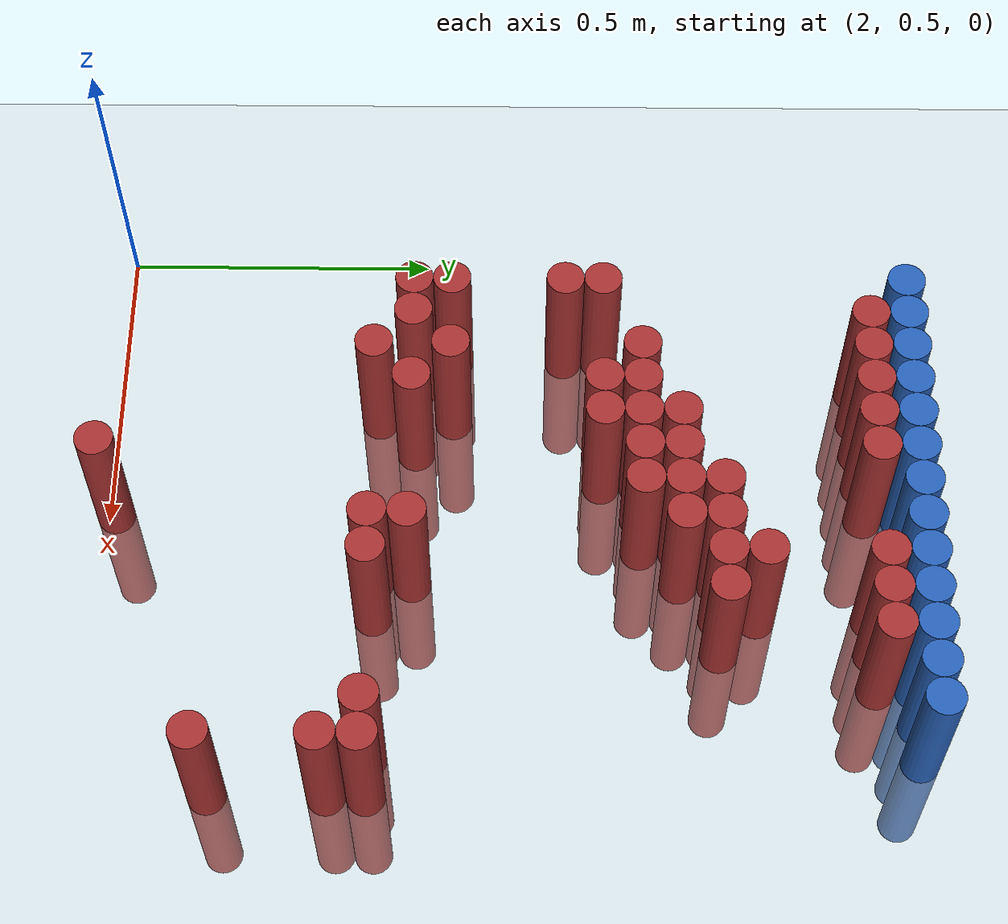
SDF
<sdf version="1.6">
 <world name="default">
  <model name="ground_plane">
   <static>1</static>
   <link name="link">
    <collision name="collision">
     <geometry><plane><normal>0 0 1</normal><size>100 100</size></plane></geometry>
     <surface><friction><ode><mu>100</mu><mu2>50</mu2></ode></friction></surface>
    </collision>
    <visual name="visual">
     <cast_shadows>0</cast_shadows>
     <geometry><plane><normal>0 0 1</normal><size>100 100</size></plane></geometry>
     <material>
      <script><uri>file://media/materials/scripts/gazebo.material</uri><name>Gazebo/Grey</name></script>
     </material>
    </visual>
   </link>
  </model>
  <model name="unit_cylinder_97">
   <static>1</static>
   <pose>2.190000 1.770000 0.000000 0.000000 0.000000 0.000000</pose>
   <link name="link">
    <inertial>
     <mass>1</mass>
     <inertia><ixx>0.145833</ixx><ixy>0</ixy><ixz>0</ixz><iyy>0.145833</iyy><iyz>0</iyz><izz>0.125</izz></inertia>
    </inertial>
    <collision name="collision">
     <geometry><cylinder><radius>0.030000</radius><length>0.5</length></cylinder></geometry>
    </collision>
    <visual name="visual">
     <geometry><cylinder><radius>0.030000</radius><length>0.5</length></cylinder></geometry>
     <material>
      <ambient>0.152000 0.379000 0.720000 1</ambient>
      <diffuse>0.152000 0.379000 0.720000 1</diffuse>
     </material>
     <material>
      <script><name>Gazebo/Grey</name><uri>file://media/materials/scripts/gazebo.material</uri></script>
     </material>
    </visual>
   </link>
  </model>
  <model name="unit_cylinder_98">
   <static>1</static>
   <pose>2.250000 1.770000 0.000000 0.000000 0.000000 0.000000</pose>
   <link name="link">
    <inertial>
     <mass>1</mass>
     <inertia><ixx>0.145833</ixx><ixy>0</ixy><ixz>0</ixz><iyy>0.145833</iyy><iyz>0</iyz><izz>0.125</izz></inertia>
    </inertial>
    <collision name="collision">
     <geometry><cylinder><radius>0.030000</radius><length>0.5</length></cylinder></geometry>
    </collision>
    <visual name="visual">
     <geometry><cylinder><radius>0.030000</radius><length>0.5</length></cylinder></geometry>
     <material>
      <ambient>0.152000 0.379000 0.720000 1</ambient>
      <diffuse>0.152000 0.379000 0.720000 1</diffuse>
     </material>
     <material>
      <script><name>Gazebo/Grey</name><uri>file://media/materials/scripts/gazebo.material</uri></script>
     </material>
    </visual>
   </link>
  </model>
  <model name="unit_cylinder_99">
   <static>1</static>
   <pose>2.310000 1.770000 0.000000 0.000000 0.000000 0.000000</pose>
   <link name="link">
    <inertial>
     <mass>1</mass>
     <inertia><ixx>0.145833</ixx><ixy>0</ixy><ixz>0</ixz><iyy>0.145833</iyy><iyz>0</iyz><izz>0.125</izz></inertia>
    </inertial>
    <collision name="collision">
     <geometry><cylinder><radius>0.030000</radius><length>0.5</length></cylinder></geometry>
    </collision>
    <visual name="visual">
     <geometry><cylinder><radius>0.030000</radius><length>0.5</length></cylinder></geometry>
     <material>
      <ambient>0.152000 0.379000 0.720000 1</ambient>
      <diffuse>0.152000 0.379000 0.720000 1</diffuse>
     </material>
     <material>
      <script><name>Gazebo/Grey</name><uri>file://media/materials/scripts/gazebo.material</uri></script>
     </material>
    </visual>
   </link>
  </model>
  <model name="unit_cylinder_100">
   <static>1</static>
   <pose>2.370000 1.770000 0.000000 0.000000 0.000000 0.000000</pose>
   <link name="link">
    <inertial>
     <mass>1</mass>
     <inertia><ixx>0.145833</ixx><ixy>0</ixy><ixz>0</ixz><iyy>0.145833</iyy><iyz>0</iyz><izz>0.125</izz></inertia>
    </inertial>
    <collision name="collision">
     <geometry><cylinder><radius>0.030000</radius><length>0.5</length></cylinder></geometry>
    </collision>
    <visual name="visual">
     <geometry><cylinder><radius>0.030000</radius><length>0.5</length></cylinder></geometry>
     <material>
      <ambient>0.152000 0.379000 0.720000 1</ambient>
      <diffuse>0.152000 0.379000 0.720000 1</diffuse>
     </material>
     <material>
      <script><name>Gazebo/Grey</name><uri>file://media/materials/scripts/gazebo.material</uri></script>
     </material>
    </visual>
   </link>
  </model>
  <model name="unit_cylinder_101">
   <static>1</static>
   <pose>2.430000 1.770000 0.000000 0.000000 0.000000 0.000000</pose>
   <link name="link">
    <inertial>
     <mass>1</mass>
     <inertia><ixx>0.145833</ixx><ixy>0</ixy><ixz>0</ixz><iyy>0.145833</iyy><iyz>0</iyz><izz>0.125</izz></inertia>
    </inertial>
    <collision name="collision">
     <geometry><cylinder><radius>0.030000</radius><length>0.5</length></cylinder></geometry>
    </collision>
    <visual name="visual">
     <geometry><cylinder><radius>0.030000</radius><length>0.5</length></cylinder></geometry>
     <material>
      <ambient>0.152000 0.379000 0.720000 1</ambient>
      <diffuse>0.152000 0.379000 0.720000 1</diffuse>
     </material>
     <material>
      <script><name>Gazebo/Grey</name><uri>file://media/materials/scripts/gazebo.material</uri></script>
     </material>
    </visual>
   </link>
  </model>
  <model name="unit_cylinder_102">
   <static>1</static>
   <pose>2.490000 1.770000 0.000000 0.000000 0.000000 0.000000</pose>
   <link name="link">
    <inertial>
     <mass>1</mass>
     <inertia><ixx>0.145833</ixx><ixy>0</ixy><ixz>0</ixz><iyy>0.145833</iyy><iyz>0</iyz><izz>0.125</izz></inertia>
    </inertial>
    <collision name="collision">
     <geometry><cylinder><radius>0.030000</radius><length>0.5</length></cylinder></geometry>
    </collision>
    <visual name="visual">
     <geometry><cylinder><radius>0.030000</radius><length>0.5</length></cylinder></geometry>
     <material>
      <ambient>0.152000 0.379000 0.720000 1</ambient>
      <diffuse>0.152000 0.379000 0.720000 1</diffuse>
     </material>
     <material>
      <script><name>Gazebo/Grey</name><uri>file://media/materials/scripts/gazebo.material</uri></script>
     </material>
    </visual>
   </link>
  </model>
  <model name="unit_cylinder_103">
   <static>1</static>
   <pose>2.550000 1.770000 0.000000 0.000000 0.000000 0.000000</pose>
   <link name="link">
    <inertial>
     <mass>1</mass>
     <inertia><ixx>0.145833</ixx><ixy>0</ixy><ixz>0</ixz><iyy>0.145833</iyy><iyz>0</iyz><izz>0.125</izz></inertia>
    </inertial>
    <collision name="collision">
     <geometry><cylinder><radius>0.030000</radius><length>0.5</length></cylinder></geometry>
    </collision>
    <visual name="visual">
     <geometry><cylinder><radius>0.030000</radius><length>0.5</length></cylinder></geometry>
     <material>
      <ambient>0.152000 0.379000 0.720000 1</ambient>
      <diffuse>0.152000 0.379000 0.720000 1</diffuse>
     </material>
     <material>
      <script><name>Gazebo/Grey</name><uri>file://media/materials/scripts/gazebo.material</uri></script>
     </material>
    </visual>
   </link>
  </model>
  <model name="unit_cylinder_104">
   <static>1</static>
   <pose>2.610000 1.770000 0.000000 0.000000 0.000000 0.000000</pose>
   <link name="link">
    <inertial>
     <mass>1</mass>
     <inertia><ixx>0.145833</ixx><ixy>0</ixy><ixz>0</ixz><iyy>0.145833</iyy><iyz>0</iyz><izz>0.125</izz></inertia>
    </inertial>
    <collision name="collision">
     <geometry><cylinder><radius>0.030000</radius><length>0.5</length></cylinder></geometry>
    </collision>
    <visual name="visual">
     <geometry><cylinder><radius>0.030000</radius><length>0.5</length></cylinder></geometry>
     <material>
      <ambient>0.152000 0.379000 0.720000 1</ambient>
      <diffuse>0.152000 0.379000 0.720000 1</diffuse>
     </material>
     <material>
      <script><name>Gazebo/Grey</name><uri>file://media/materials/scripts/gazebo.material</uri></script>
     </material>
    </visual>
   </link>
  </model>
  <model name="unit_cylinder_105">
   <static>1</static>
   <pose>2.670000 1.770000 0.000000 0.000000 0.000000 0.000000</pose>
   <link name="link">
    <inertial>
     <mass>1</mass>
     <inertia><ixx>0.145833</ixx><ixy>0</ixy><ixz>0</ixz><iyy>0.145833</iyy><iyz>0</iyz><izz>0.125</izz></inertia>
    </inertial>
    <collision name="collision">
     <geometry><cylinder><radius>0.030000</radius><length>0.5</length></cylinder></geometry>
    </collision>
    <visual name="visual">
     <geometry><cylinder><radius>0.030000</radius><length>0.5</length></cylinder></geometry>
     <material>
      <ambient>0.152000 0.379000 0.720000 1</ambient>
      <diffuse>0.152000 0.379000 0.720000 1</diffuse>
     </material>
     <material>
      <script><name>Gazebo/Grey</name><uri>file://media/materials/scripts/gazebo.material</uri></script>
     </material>
    </visual>
   </link>
  </model>
  <model name="unit_cylinder_106">
   <static>1</static>
   <pose>2.730000 1.770000 0.000000 0.000000 0.000000 0.000000</pose>
   <link name="link">
    <inertial>
     <mass>1</mass>
     <inertia><ixx>0.145833</ixx><ixy>0</ixy><ixz>0</ixz><iyy>0.145833</iyy><iyz>0</iyz><izz>0.125</izz></inertia>
    </inertial>
    <collision name="collision">
     <geometry><cylinder><radius>0.030000</radius><length>0.5</length></cylinder></geometry>
    </collision>
    <visual name="visual">
     <geometry><cylinder><radius>0.030000</radius><length>0.5</length></cylinder></geometry>
     <material>
      <ambient>0.152000 0.379000 0.720000 1</ambient>
      <diffuse>0.152000 0.379000 0.720000 1</diffuse>
     </material>
     <material>
      <script><name>Gazebo/Grey</name><uri>file://media/materials/scripts/gazebo.material</uri></script>
     </material>
    </visual>
   </link>
  </model>
  <model name="unit_cylinder_107">
   <static>1</static>
   <pose>2.790000 1.770000 0.000000 0.000000 0.000000 0.000000</pose>
   <link name="link">
    <inertial>
     <mass>1</mass>
     <inertia><ixx>0.145833</ixx><ixy>0</ixy><ixz>0</ixz><iyy>0.145833</iyy><iyz>0</iyz><izz>0.125</izz></inertia>
    </inertial>
    <collision name="collision">
     <geometry><cylinder><radius>0.030000</radius><length>0.5</length></cylinder></geometry>
    </collision>
    <visual name="visual">
     <geometry><cylinder><radius>0.030000</radius><length>0.5</length></cylinder></geometry>
     <material>
      <ambient>0.152000 0.379000 0.720000 1</ambient>
      <diffuse>0.152000 0.379000 0.720000 1</diffuse>
     </material>
     <material>
      <script><name>Gazebo/Grey</name><uri>file://media/materials/scripts/gazebo.material</uri></script>
     </material>
    </visual>
   </link>
  </model>
  <model name="unit_cylinder_108">
   <static>1</static>
   <pose>2.850000 1.770000 0.000000 0.000000 0.000000 0.000000</pose>
   <link name="link">
    <inertial>
     <mass>1</mass>
     <inertia><ixx>0.145833</ixx><ixy>0</ixy><ixz>0</ixz><iyy>0.145833</iyy><iyz>0</iyz><izz>0.125</izz></inertia>
    </inertial>
    <collision name="collision">
     <geometry><cylinder><radius>0.030000</radius><length>0.5</length></cylinder></geometry>
    </collision>
    <visual name="visual">
     <geometry><cylinder><radius>0.030000</radius><length>0.5</length></cylinder></geometry>
     <material>
      <ambient>0.152000 0.379000 0.720000 1</ambient>
      <diffuse>0.152000 0.379000 0.720000 1</diffuse>
     </material>
     <material>
      <script><name>Gazebo/Grey</name><uri>file://media/materials/scripts/gazebo.material</uri></script>
     </material>
    </visual>
   </link>
  </model>
  <model name="unit_cylinder_109">
   <static>1</static>
   <pose>2.910000 1.770000 0.000000 0.000000 0.000000 0.000000</pose>
   <link name="link">
    <inertial>
     <mass>1</mass>
     <inertia><ixx>0.145833</ixx><ixy>0</ixy><ixz>0</ixz><iyy>0.145833</iyy><iyz>0</iyz><izz>0.125</izz></inertia>
    </inertial>
    <collision name="collision">
     <geometry><cylinder><radius>0.030000</radius><length>0.5</length></cylinder></geometry>
    </collision>
    <visual name="visual">
     <geometry><cylinder><radius>0.030000</radius><length>0.5</length></cylinder></geometry>
     <material>
      <ambient>0.152000 0.379000 0.720000 1</ambient>
      <diffuse>0.152000 0.379000 0.720000 1</diffuse>
     </material>
     <material>
      <script><name>Gazebo/Grey</name><uri>file://media/materials/scripts/gazebo.material</uri></script>
     </material>
    </visual>
   </link>
  </model>
  <model name="unit_cylinder_126">
   <static>1</static>
   <pose>2.250000 1.710000 0.000000 0.000000 0.000000 0.000000</pose>
   <link name="link">
    <inertial>
     <mass>1</mass>
     <inertia><ixx>0.145833</ixx><ixy>0</ixy><ixz>0</ixz><iyy>0.145833</iyy><iyz>0</iyz><izz>0.125</izz></inertia>
    </inertial>
    <collision name="collision">
     <geometry><cylinder><radius>0.030000</radius><length>0.5</length></cylinder></geometry>
    </collision>
    <visual name="visual">
     <geometry><cylinder><radius>0.030000</radius><length>0.5</length></cylinder></geometry>
     <material>
      <ambient>0.648000 0.192000 0.192000 1</ambient>
      <diffuse>0.648000 0.192000 0.192000 1</diffuse>
     </material>
     <material>
      <script><name>Gazebo/Grey</name><uri>file://media/materials/scripts/gazebo.material</uri></script>
     </material>
    </visual>
   </link>
  </model>
  <model name="unit_cylinder_127">
   <static>1</static>
   <pose>2.310000 1.710000 0.000000 0.000000 0.000000 0.000000</pose>
   <link name="link">
    <inertial>
     <mass>1</mass>
     <inertia><ixx>0.145833</ixx><ixy>0</ixy><ixz>0</ixz><iyy>0.145833</iyy><iyz>0</iyz><izz>0.125</izz></inertia>
    </inertial>
    <collision name="collision">
     <geometry><cylinder><radius>0.030000</radius><length>0.5</length></cylinder></geometry>
    </collision>
    <visual name="visual">
     <geometry><cylinder><radius>0.030000</radius><length>0.5</length></cylinder></geometry>
     <material>
      <ambient>0.648000 0.192000 0.192000 1</ambient>
      <diffuse>0.648000 0.192000 0.192000 1</diffuse>
     </material>
     <material>
      <script><name>Gazebo/Grey</name><uri>file://media/materials/scripts/gazebo.material</uri></script>
     </material>
    </visual>
   </link>
  </model>
  <model name="unit_cylinder_128">
   <static>1</static>
   <pose>2.370000 1.710000 0.000000 0.000000 0.000000 0.000000</pose>
   <link name="link">
    <inertial>
     <mass>1</mass>
     <inertia><ixx>0.145833</ixx><ixy>0</ixy><ixz>0</ixz><iyy>0.145833</iyy><iyz>0</iyz><izz>0.125</izz></inertia>
    </inertial>
    <collision name="collision">
     <geometry><cylinder><radius>0.030000</radius><length>0.5</length></cylinder></geometry>
    </collision>
    <visual name="visual">
     <geometry><cylinder><radius>0.030000</radius><length>0.5</length></cylinder></geometry>
     <material>
      <ambient>0.648000 0.192000 0.192000 1</ambient>
      <diffuse>0.648000 0.192000 0.192000 1</diffuse>
     </material>
     <material>
      <script><name>Gazebo/Grey</name><uri>file://media/materials/scripts/gazebo.material</uri></script>
     </material>
    </visual>
   </link>
  </model>
  <model name="unit_cylinder_129">
   <static>1</static>
   <pose>2.430000 1.710000 0.000000 0.000000 0.000000 0.000000</pose>
   <link name="link">
    <inertial>
     <mass>1</mass>
     <inertia><ixx>0.145833</ixx><ixy>0</ixy><ixz>0</ixz><iyy>0.145833</iyy><iyz>0</iyz><izz>0.125</izz></inertia>
    </inertial>
    <collision name="collision">
     <geometry><cylinder><radius>0.030000</radius><length>0.5</length></cylinder></geometry>
    </collision>
    <visual name="visual">
     <geometry><cylinder><radius>0.030000</radius><length>0.5</length></cylinder></geometry>
     <material>
      <ambient>0.648000 0.192000 0.192000 1</ambient>
      <diffuse>0.648000 0.192000 0.192000 1</diffuse>
     </material>
     <material>
      <script><name>Gazebo/Grey</name><uri>file://media/materials/scripts/gazebo.material</uri></script>
     </material>
    </visual>
   </link>
  </model>
  <model name="unit_cylinder_130">
   <static>1</static>
   <pose>2.490000 1.710000 0.000000 0.000000 0.000000 0.000000</pose>
   <link name="link">
    <inertial>
     <mass>1</mass>
     <inertia><ixx>0.145833</ixx><ixy>0</ixy><ixz>0</ixz><iyy>0.145833</iyy><iyz>0</iyz><izz>0.125</izz></inertia>
    </inertial>
    <collision name="collision">
     <geometry><cylinder><radius>0.030000</radius><length>0.5</length></cylinder></geometry>
    </collision>
    <visual name="visual">
     <geometry><cylinder><radius>0.030000</radius><length>0.5</length></cylinder></geometry>
     <material>
      <ambient>0.648000 0.192000 0.192000 1</ambient>
      <diffuse>0.648000 0.192000 0.192000 1</diffuse>
     </material>
     <material>
      <script><name>Gazebo/Grey</name><uri>file://media/materials/scripts/gazebo.material</uri></script>
     </material>
    </visual>
   </link>
  </model>
  <model name="unit_cylinder_131">
   <static>1</static>
   <pose>2.670000 1.710000 0.000000 0.000000 0.000000 0.000000</pose>
   <link name="link">
    <inertial>
     <mass>1</mass>
     <inertia><ixx>0.145833</ixx><ixy>0</ixy><ixz>0</ixz><iyy>0.145833</iyy><iyz>0</iyz><izz>0.125</izz></inertia>
    </inertial>
    <collision name="collision">
     <geometry><cylinder><radius>0.030000</radius><length>0.5</length></cylinder></geometry>
    </collision>
    <visual name="visual">
     <geometry><cylinder><radius>0.030000</radius><length>0.5</length></cylinder></geometry>
     <material>
      <ambient>0.648000 0.192000 0.192000 1</ambient>
      <diffuse>0.648000 0.192000 0.192000 1</diffuse>
     </material>
     <material>
      <script><name>Gazebo/Grey</name><uri>file://media/materials/scripts/gazebo.material</uri></script>
     </material>
    </visual>
   </link>
  </model>
  <model name="unit_cylinder_132">
   <static>1</static>
   <pose>2.730000 1.710000 0.000000 0.000000 0.000000 0.000000</pose>
   <link name="link">
    <inertial>
     <mass>1</mass>
     <inertia><ixx>0.145833</ixx><ixy>0</ixy><ixz>0</ixz><iyy>0.145833</iyy><iyz>0</iyz><izz>0.125</izz></inertia>
    </inertial>
    <collision name="collision">
     <geometry><cylinder><radius>0.030000</radius><length>0.5</length></cylinder></geometry>
    </collision>
    <visual name="visual">
     <geometry><cylinder><radius>0.030000</radius><length>0.5</length></cylinder></geometry>
     <material>
      <ambient>0.648000 0.192000 0.192000 1</ambient>
      <diffuse>0.648000 0.192000 0.192000 1</diffuse>
     </material>
     <material>
      <script><name>Gazebo/Grey</name><uri>file://media/materials/scripts/gazebo.material</uri></script>
     </material>
    </visual>
   </link>
  </model>
  <model name="unit_cylinder_133">
   <static>1</static>
   <pose>2.790000 1.710000 0.000000 0.000000 0.000000 0.000000</pose>
   <link name="link">
    <inertial>
     <mass>1</mass>
     <inertia><ixx>0.145833</ixx><ixy>0</ixy><ixz>0</ixz><iyy>0.145833</iyy><iyz>0</iyz><izz>0.125</izz></inertia>
    </inertial>
    <collision name="collision">
     <geometry><cylinder><radius>0.030000</radius><length>0.5</length></cylinder></geometry>
    </collision>
    <visual name="visual">
     <geometry><cylinder><radius>0.030000</radius><length>0.5</length></cylinder></geometry>
     <material>
      <ambient>0.648000 0.192000 0.192000 1</ambient>
      <diffuse>0.648000 0.192000 0.192000 1</diffuse>
     </material>
     <material>
      <script><name>Gazebo/Grey</name><uri>file://media/materials/scripts/gazebo.material</uri></script>
     </material>
    </visual>
   </link>
  </model>
  <model name="unit_cylinder_137">
   <static>1</static>
   <pose>2.670000 1.530000 0.000000 0.000000 0.000000 0.000000</pose>
   <link name="link">
    <inertial>
     <mass>1</mass>
     <inertia><ixx>0.145833</ixx><ixy>0</ixy><ixz>0</ixz><iyy>0.145833</iyy><iyz>0</iyz><izz>0.125</izz></inertia>
    </inertial>
    <collision name="collision">
     <geometry><cylinder><radius>0.030000</radius><length>0.5</length></cylinder></geometry>
    </collision>
    <visual name="visual">
     <geometry><cylinder><radius>0.030000</radius><length>0.5</length></cylinder></geometry>
     <material>
      <ambient>0.648000 0.192000 0.192000 1</ambient>
      <diffuse>0.648000 0.192000 0.192000 1</diffuse>
     </material>
     <material>
      <script><name>Gazebo/Grey</name><uri>file://media/materials/scripts/gazebo.material</uri></script>
     </material>
    </visual>
   </link>
  </model>
  <model name="unit_cylinder_140">
   <static>1</static>
   <pose>2.550000 1.470000 0.000000 0.000000 0.000000 0.000000</pose>
   <link name="link">
    <inertial>
     <mass>1</mass>
     <inertia><ixx>0.145833</ixx><ixy>0</ixy><ixz>0</ixz><iyy>0.145833</iyy><iyz>0</iyz><izz>0.125</izz></inertia>
    </inertial>
    <collision name="collision">
     <geometry><cylinder><radius>0.030000</radius><length>0.5</length></cylinder></geometry>
    </collision>
    <visual name="visual">
     <geometry><cylinder><radius>0.030000</radius><length>0.5</length></cylinder></geometry>
     <material>
      <ambient>0.648000 0.192000 0.192000 1</ambient>
      <diffuse>0.648000 0.192000 0.192000 1</diffuse>
     </material>
     <material>
      <script><name>Gazebo/Grey</name><uri>file://media/materials/scripts/gazebo.material</uri></script>
     </material>
    </visual>
   </link>
  </model>
  <model name="unit_cylinder_141">
   <static>1</static>
   <pose>2.610000 1.470000 0.000000 0.000000 0.000000 0.000000</pose>
   <link name="link">
    <inertial>
     <mass>1</mass>
     <inertia><ixx>0.145833</ixx><ixy>0</ixy><ixz>0</ixz><iyy>0.145833</iyy><iyz>0</iyz><izz>0.125</izz></inertia>
    </inertial>
    <collision name="collision">
     <geometry><cylinder><radius>0.030000</radius><length>0.5</length></cylinder></geometry>
    </collision>
    <visual name="visual">
     <geometry><cylinder><radius>0.030000</radius><length>0.5</length></cylinder></geometry>
     <material>
      <ambient>0.648000 0.192000 0.192000 1</ambient>
      <diffuse>0.648000 0.192000 0.192000 1</diffuse>
     </material>
     <material>
      <script><name>Gazebo/Grey</name><uri>file://media/materials/scripts/gazebo.material</uri></script>
     </material>
    </visual>
   </link>
  </model>
  <model name="unit_cylinder_142">
   <static>1</static>
   <pose>2.670000 1.470000 0.000000 0.000000 0.000000 0.000000</pose>
   <link name="link">
    <inertial>
     <mass>1</mass>
     <inertia><ixx>0.145833</ixx><ixy>0</ixy><ixz>0</ixz><iyy>0.145833</iyy><iyz>0</iyz><izz>0.125</izz></inertia>
    </inertial>
    <collision name="collision">
     <geometry><cylinder><radius>0.030000</radius><length>0.5</length></cylinder></geometry>
    </collision>
    <visual name="visual">
     <geometry><cylinder><radius>0.030000</radius><length>0.5</length></cylinder></geometry>
     <material>
      <ambient>0.648000 0.192000 0.192000 1</ambient>
      <diffuse>0.648000 0.192000 0.192000 1</diffuse>
     </material>
     <material>
      <script><name>Gazebo/Grey</name><uri>file://media/materials/scripts/gazebo.material</uri></script>
     </material>
    </visual>
   </link>
  </model>
  <model name="unit_cylinder_143">
   <static>1</static>
   <pose>2.730000 1.470000 0.000000 0.000000 0.000000 0.000000</pose>
   <link name="link">
    <inertial>
     <mass>1</mass>
     <inertia><ixx>0.145833</ixx><ixy>0</ixy><ixz>0</ixz><iyy>0.145833</iyy><iyz>0</iyz><izz>0.125</izz></inertia>
    </inertial>
    <collision name="collision">
     <geometry><cylinder><radius>0.030000</radius><length>0.5</length></cylinder></geometry>
    </collision>
    <visual name="visual">
     <geometry><cylinder><radius>0.030000</radius><length>0.5</length></cylinder></geometry>
     <material>
      <ambient>0.648000 0.192000 0.192000 1</ambient>
      <diffuse>0.648000 0.192000 0.192000 1</diffuse>
     </material>
     <material>
      <script><name>Gazebo/Grey</name><uri>file://media/materials/scripts/gazebo.material</uri></script>
     </material>
    </visual>
   </link>
  </model>
  <model name="unit_cylinder_146">
   <static>1</static>
   <pose>2.430000 1.410000 0.000000 0.000000 0.000000 0.000000</pose>
   <link name="link">
    <inertial>
     <mass>1</mass>
     <inertia><ixx>0.145833</ixx><ixy>0</ixy><ixz>0</ixz><iyy>0.145833</iyy><iyz>0</iyz><izz>0.125</izz></inertia>
    </inertial>
    <collision name="collision">
     <geometry><cylinder><radius>0.030000</radius><length>0.5</length></cylinder></geometry>
    </collision>
    <visual name="visual">
     <geometry><cylinder><radius>0.030000</radius><length>0.5</length></cylinder></geometry>
     <material>
      <ambient>0.648000 0.192000 0.192000 1</ambient>
      <diffuse>0.648000 0.192000 0.192000 1</diffuse>
     </material>
     <material>
      <script><name>Gazebo/Grey</name><uri>file://media/materials/scripts/gazebo.material</uri></script>
     </material>
    </visual>
   </link>
  </model>
  <model name="unit_cylinder_147">
   <static>1</static>
   <pose>2.490000 1.410000 0.000000 0.000000 0.000000 0.000000</pose>
   <link name="link">
    <inertial>
     <mass>1</mass>
     <inertia><ixx>0.145833</ixx><ixy>0</ixy><ixz>0</ixz><iyy>0.145833</iyy><iyz>0</iyz><izz>0.125</izz></inertia>
    </inertial>
    <collision name="collision">
     <geometry><cylinder><radius>0.030000</radius><length>0.5</length></cylinder></geometry>
    </collision>
    <visual name="visual">
     <geometry><cylinder><radius>0.030000</radius><length>0.5</length></cylinder></geometry>
     <material>
      <ambient>0.648000 0.192000 0.192000 1</ambient>
      <diffuse>0.648000 0.192000 0.192000 1</diffuse>
     </material>
     <material>
      <script><name>Gazebo/Grey</name><uri>file://media/materials/scripts/gazebo.material</uri></script>
     </material>
    </visual>
   </link>
  </model>
  <model name="unit_cylinder_148">
   <static>1</static>
   <pose>2.550000 1.410000 0.000000 0.000000 0.000000 0.000000</pose>
   <link name="link">
    <inertial>
     <mass>1</mass>
     <inertia><ixx>0.145833</ixx><ixy>0</ixy><ixz>0</ixz><iyy>0.145833</iyy><iyz>0</iyz><izz>0.125</izz></inertia>
    </inertial>
    <collision name="collision">
     <geometry><cylinder><radius>0.030000</radius><length>0.5</length></cylinder></geometry>
    </collision>
    <visual name="visual">
     <geometry><cylinder><radius>0.030000</radius><length>0.5</length></cylinder></geometry>
     <material>
      <ambient>0.648000 0.192000 0.192000 1</ambient>
      <diffuse>0.648000 0.192000 0.192000 1</diffuse>
     </material>
     <material>
      <script><name>Gazebo/Grey</name><uri>file://media/materials/scripts/gazebo.material</uri></script>
     </material>
    </visual>
   </link>
  </model>
  <model name="unit_cylinder_149">
   <static>1</static>
   <pose>2.610000 1.410000 0.000000 0.000000 0.000000 0.000000</pose>
   <link name="link">
    <inertial>
     <mass>1</mass>
     <inertia><ixx>0.145833</ixx><ixy>0</ixy><ixz>0</ixz><iyy>0.145833</iyy><iyz>0</iyz><izz>0.125</izz></inertia>
    </inertial>
    <collision name="collision">
     <geometry><cylinder><radius>0.030000</radius><length>0.5</length></cylinder></geometry>
    </collision>
    <visual name="visual">
     <geometry><cylinder><radius>0.030000</radius><length>0.5</length></cylinder></geometry>
     <material>
      <ambient>0.648000 0.192000 0.192000 1</ambient>
      <diffuse>0.648000 0.192000 0.192000 1</diffuse>
     </material>
     <material>
      <script><name>Gazebo/Grey</name><uri>file://media/materials/scripts/gazebo.material</uri></script>
     </material>
    </visual>
   </link>
  </model>
  <model name="unit_cylinder_152">
   <static>1</static>
   <pose>2.310000 1.350000 0.000000 0.000000 0.000000 0.000000</pose>
   <link name="link">
    <inertial>
     <mass>1</mass>
     <inertia><ixx>0.145833</ixx><ixy>0</ixy><ixz>0</ixz><iyy>0.145833</iyy><iyz>0</iyz><izz>0.125</izz></inertia>
    </inertial>
    <collision name="collision">
     <geometry><cylinder><radius>0.030000</radius><length>0.5</length></cylinder></geometry>
    </collision>
    <visual name="visual">
     <geometry><cylinder><radius>0.030000</radius><length>0.5</length></cylinder></geometry>
     <material>
      <ambient>0.648000 0.192000 0.192000 1</ambient>
      <diffuse>0.648000 0.192000 0.192000 1</diffuse>
     </material>
     <material>
      <script><name>Gazebo/Grey</name><uri>file://media/materials/scripts/gazebo.material</uri></script>
     </material>
    </visual>
   </link>
  </model>
  <model name="unit_cylinder_153">
   <static>1</static>
   <pose>2.370000 1.350000 0.000000 0.000000 0.000000 0.000000</pose>
   <link name="link">
    <inertial>
     <mass>1</mass>
     <inertia><ixx>0.145833</ixx><ixy>0</ixy><ixz>0</ixz><iyy>0.145833</iyy><iyz>0</iyz><izz>0.125</izz></inertia>
    </inertial>
    <collision name="collision">
     <geometry><cylinder><radius>0.030000</radius><length>0.5</length></cylinder></geometry>
    </collision>
    <visual name="visual">
     <geometry><cylinder><radius>0.030000</radius><length>0.5</length></cylinder></geometry>
     <material>
      <ambient>0.648000 0.192000 0.192000 1</ambient>
      <diffuse>0.648000 0.192000 0.192000 1</diffuse>
     </material>
     <material>
      <script><name>Gazebo/Grey</name><uri>file://media/materials/scripts/gazebo.material</uri></script>
     </material>
    </visual>
   </link>
  </model>
  <model name="unit_cylinder_154">
   <static>1</static>
   <pose>2.430000 1.350000 0.000000 0.000000 0.000000 0.000000</pose>
   <link name="link">
    <inertial>
     <mass>1</mass>
     <inertia><ixx>0.145833</ixx><ixy>0</ixy><ixz>0</ixz><iyy>0.145833</iyy><iyz>0</iyz><izz>0.125</izz></inertia>
    </inertial>
    <collision name="collision">
     <geometry><cylinder><radius>0.030000</radius><length>0.5</length></cylinder></geometry>
    </collision>
    <visual name="visual">
     <geometry><cylinder><radius>0.030000</radius><length>0.5</length></cylinder></geometry>
     <material>
      <ambient>0.648000 0.192000 0.192000 1</ambient>
      <diffuse>0.648000 0.192000 0.192000 1</diffuse>
     </material>
     <material>
      <script><name>Gazebo/Grey</name><uri>file://media/materials/scripts/gazebo.material</uri></script>
     </material>
    </visual>
   </link>
  </model>
  <model name="unit_cylinder_155">
   <static>1</static>
   <pose>2.490000 1.350000 0.000000 0.000000 0.000000 0.000000</pose>
   <link name="link">
    <inertial>
     <mass>1</mass>
     <inertia><ixx>0.145833</ixx><ixy>0</ixy><ixz>0</ixz><iyy>0.145833</iyy><iyz>0</iyz><izz>0.125</izz></inertia>
    </inertial>
    <collision name="collision">
     <geometry><cylinder><radius>0.030000</radius><length>0.5</length></cylinder></geometry>
    </collision>
    <visual name="visual">
     <geometry><cylinder><radius>0.030000</radius><length>0.5</length></cylinder></geometry>
     <material>
      <ambient>0.648000 0.192000 0.192000 1</ambient>
      <diffuse>0.648000 0.192000 0.192000 1</diffuse>
     </material>
     <material>
      <script><name>Gazebo/Grey</name><uri>file://media/materials/scripts/gazebo.material</uri></script>
     </material>
    </visual>
   </link>
  </model>
  <model name="unit_cylinder_156">
   <static>1</static>
   <pose>2.550000 1.350000 0.000000 0.000000 0.000000 0.000000</pose>
   <link name="link">
    <inertial>
     <mass>1</mass>
     <inertia><ixx>0.145833</ixx><ixy>0</ixy><ixz>0</ixz><iyy>0.145833</iyy><iyz>0</iyz><izz>0.125</izz></inertia>
    </inertial>
    <collision name="collision">
     <geometry><cylinder><radius>0.030000</radius><length>0.5</length></cylinder></geometry>
    </collision>
    <visual name="visual">
     <geometry><cylinder><radius>0.030000</radius><length>0.5</length></cylinder></geometry>
     <material>
      <ambient>0.648000 0.192000 0.192000 1</ambient>
      <diffuse>0.648000 0.192000 0.192000 1</diffuse>
     </material>
     <material>
      <script><name>Gazebo/Grey</name><uri>file://media/materials/scripts/gazebo.material</uri></script>
     </material>
    </visual>
   </link>
  </model>
  <model name="unit_cylinder_159">
   <static>1</static>
   <pose>2.190000 1.290000 0.000000 0.000000 0.000000 0.000000</pose>
   <link name="link">
    <inertial>
     <mass>1</mass>
     <inertia><ixx>0.145833</ixx><ixy>0</ixy><ixz>0</ixz><iyy>0.145833</iyy><iyz>0</iyz><izz>0.125</izz></inertia>
    </inertial>
    <collision name="collision">
     <geometry><cylinder><radius>0.030000</radius><length>0.5</length></cylinder></geometry>
    </collision>
    <visual name="visual">
     <geometry><cylinder><radius>0.030000</radius><length>0.5</length></cylinder></geometry>
     <material>
      <ambient>0.648000 0.192000 0.192000 1</ambient>
      <diffuse>0.648000 0.192000 0.192000 1</diffuse>
     </material>
     <material>
      <script><name>Gazebo/Grey</name><uri>file://media/materials/scripts/gazebo.material</uri></script>
     </material>
    </visual>
   </link>
  </model>
  <model name="unit_cylinder_160">
   <static>1</static>
   <pose>2.370000 1.290000 0.000000 0.000000 0.000000 0.000000</pose>
   <link name="link">
    <inertial>
     <mass>1</mass>
     <inertia><ixx>0.145833</ixx><ixy>0</ixy><ixz>0</ixz><iyy>0.145833</iyy><iyz>0</iyz><izz>0.125</izz></inertia>
    </inertial>
    <collision name="collision">
     <geometry><cylinder><radius>0.030000</radius><length>0.5</length></cylinder></geometry>
    </collision>
    <visual name="visual">
     <geometry><cylinder><radius>0.030000</radius><length>0.5</length></cylinder></geometry>
     <material>
      <ambient>0.648000 0.192000 0.192000 1</ambient>
      <diffuse>0.648000 0.192000 0.192000 1</diffuse>
     </material>
     <material>
      <script><name>Gazebo/Grey</name><uri>file://media/materials/scripts/gazebo.material</uri></script>
     </material>
    </visual>
   </link>
  </model>
  <model name="unit_cylinder_161">
   <static>1</static>
   <pose>2.430000 1.290000 0.000000 0.000000 0.000000 0.000000</pose>
   <link name="link">
    <inertial>
     <mass>1</mass>
     <inertia><ixx>0.145833</ixx><ixy>0</ixy><ixz>0</ixz><iyy>0.145833</iyy><iyz>0</iyz><izz>0.125</izz></inertia>
    </inertial>
    <collision name="collision">
     <geometry><cylinder><radius>0.030000</radius><length>0.5</length></cylinder></geometry>
    </collision>
    <visual name="visual">
     <geometry><cylinder><radius>0.030000</radius><length>0.5</length></cylinder></geometry>
     <material>
      <ambient>0.648000 0.192000 0.192000 1</ambient>
      <diffuse>0.648000 0.192000 0.192000 1</diffuse>
     </material>
     <material>
      <script><name>Gazebo/Grey</name><uri>file://media/materials/scripts/gazebo.material</uri></script>
     </material>
    </visual>
   </link>
  </model>
  <model name="unit_cylinder_164">
   <static>1</static>
   <pose>2.190000 1.230000 0.000000 0.000000 0.000000 0.000000</pose>
   <link name="link">
    <inertial>
     <mass>1</mass>
     <inertia><ixx>0.145833</ixx><ixy>0</ixy><ixz>0</ixz><iyy>0.145833</iyy><iyz>0</iyz><izz>0.125</izz></inertia>
    </inertial>
    <collision name="collision">
     <geometry><cylinder><radius>0.030000</radius><length>0.5</length></cylinder></geometry>
    </collision>
    <visual name="visual">
     <geometry><cylinder><radius>0.030000</radius><length>0.5</length></cylinder></geometry>
     <material>
      <ambient>0.648000 0.192000 0.192000 1</ambient>
      <diffuse>0.648000 0.192000 0.192000 1</diffuse>
     </material>
     <material>
      <script><name>Gazebo/Grey</name><uri>file://media/materials/scripts/gazebo.material</uri></script>
     </material>
    </visual>
   </link>
  </model>
  <model name="unit_cylinder_166">
   <static>1</static>
   <pose>2.190000 1.050000 0.000000 0.000000 0.000000 0.000000</pose>
   <link name="link">
    <inertial>
     <mass>1</mass>
     <inertia><ixx>0.145833</ixx><ixy>0</ixy><ixz>0</ixz><iyy>0.145833</iyy><iyz>0</iyz><izz>0.125</izz></inertia>
    </inertial>
    <collision name="collision">
     <geometry><cylinder><radius>0.030000</radius><length>0.5</length></cylinder></geometry>
    </collision>
    <visual name="visual">
     <geometry><cylinder><radius>0.030000</radius><length>0.5</length></cylinder></geometry>
     <material>
      <ambient>0.648000 0.192000 0.192000 1</ambient>
      <diffuse>0.648000 0.192000 0.192000 1</diffuse>
     </material>
     <material>
      <script><name>Gazebo/Grey</name><uri>file://media/materials/scripts/gazebo.material</uri></script>
     </material>
    </visual>
   </link>
  </model>
  <model name="unit_cylinder_167">
   <static>1</static>
   <pose>2.310000 1.050000 0.000000 0.000000 0.000000 0.000000</pose>
   <link name="link">
    <inertial>
     <mass>1</mass>
     <inertia><ixx>0.145833</ixx><ixy>0</ixy><ixz>0</ixz><iyy>0.145833</iyy><iyz>0</iyz><izz>0.125</izz></inertia>
    </inertial>
    <collision name="collision">
     <geometry><cylinder><radius>0.030000</radius><length>0.5</length></cylinder></geometry>
    </collision>
    <visual name="visual">
     <geometry><cylinder><radius>0.030000</radius><length>0.5</length></cylinder></geometry>
     <material>
      <ambient>0.648000 0.192000 0.192000 1</ambient>
      <diffuse>0.648000 0.192000 0.192000 1</diffuse>
     </material>
     <material>
      <script><name>Gazebo/Grey</name><uri>file://media/materials/scripts/gazebo.material</uri></script>
     </material>
    </visual>
   </link>
  </model>
  <model name="unit_cylinder_171">
   <static>1</static>
   <pose>2.190000 0.990000 0.000000 0.000000 0.000000 0.000000</pose>
   <link name="link">
    <inertial>
     <mass>1</mass>
     <inertia><ixx>0.145833</ixx><ixy>0</ixy><ixz>0</ixz><iyy>0.145833</iyy><iyz>0</iyz><izz>0.125</izz></inertia>
    </inertial>
    <collision name="collision">
     <geometry><cylinder><radius>0.030000</radius><length>0.5</length></cylinder></geometry>
    </collision>
    <visual name="visual">
     <geometry><cylinder><radius>0.030000</radius><length>0.5</length></cylinder></geometry>
     <material>
      <ambient>0.648000 0.192000 0.192000 1</ambient>
      <diffuse>0.648000 0.192000 0.192000 1</diffuse>
     </material>
     <material>
      <script><name>Gazebo/Grey</name><uri>file://media/materials/scripts/gazebo.material</uri></script>
     </material>
    </visual>
   </link>
  </model>
  <model name="unit_cylinder_172">
   <static>1</static>
   <pose>2.250000 0.990000 0.000000 0.000000 0.000000 0.000000</pose>
   <link name="link">
    <inertial>
     <mass>1</mass>
     <inertia><ixx>0.145833</ixx><ixy>0</ixy><ixz>0</ixz><iyy>0.145833</iyy><iyz>0</iyz><izz>0.125</izz></inertia>
    </inertial>
    <collision name="collision">
     <geometry><cylinder><radius>0.030000</radius><length>0.5</length></cylinder></geometry>
    </collision>
    <visual name="visual">
     <geometry><cylinder><radius>0.030000</radius><length>0.5</length></cylinder></geometry>
     <material>
      <ambient>0.648000 0.192000 0.192000 1</ambient>
      <diffuse>0.648000 0.192000 0.192000 1</diffuse>
     </material>
     <material>
      <script><name>Gazebo/Grey</name><uri>file://media/materials/scripts/gazebo.material</uri></script>
     </material>
    </visual>
   </link>
  </model>
  <model name="unit_cylinder_173">
   <static>1</static>
   <pose>2.370000 0.990000 0.000000 0.000000 0.000000 0.000000</pose>
   <link name="link">
    <inertial>
     <mass>1</mass>
     <inertia><ixx>0.145833</ixx><ixy>0</ixy><ixz>0</ixz><iyy>0.145833</iyy><iyz>0</iyz><izz>0.125</izz></inertia>
    </inertial>
    <collision name="collision">
     <geometry><cylinder><radius>0.030000</radius><length>0.5</length></cylinder></geometry>
    </collision>
    <visual name="visual">
     <geometry><cylinder><radius>0.030000</radius><length>0.5</length></cylinder></geometry>
     <material>
      <ambient>0.648000 0.192000 0.192000 1</ambient>
      <diffuse>0.648000 0.192000 0.192000 1</diffuse>
     </material>
     <material>
      <script><name>Gazebo/Grey</name><uri>file://media/materials/scripts/gazebo.material</uri></script>
     </material>
    </visual>
   </link>
  </model>
  <model name="unit_cylinder_174">
   <static>1</static>
   <pose>2.610000 0.990000 0.000000 0.000000 0.000000 0.000000</pose>
   <link name="link">
    <inertial>
     <mass>1</mass>
     <inertia><ixx>0.145833</ixx><ixy>0</ixy><ixz>0</ixz><iyy>0.145833</iyy><iyz>0</iyz><izz>0.125</izz></inertia>
    </inertial>
    <collision name="collision">
     <geometry><cylinder><radius>0.030000</radius><length>0.5</length></cylinder></geometry>
    </collision>
    <visual name="visual">
     <geometry><cylinder><radius>0.030000</radius><length>0.5</length></cylinder></geometry>
     <material>
      <ambient>0.648000 0.192000 0.192000 1</ambient>
      <diffuse>0.648000 0.192000 0.192000 1</diffuse>
     </material>
     <material>
      <script><name>Gazebo/Grey</name><uri>file://media/materials/scripts/gazebo.material</uri></script>
     </material>
    </visual>
   </link>
  </model>
  <model name="unit_cylinder_176">
   <static>1</static>
   <pose>2.310000 0.930000 0.000000 0.000000 0.000000 0.000000</pose>
   <link name="link">
    <inertial>
     <mass>1</mass>
     <inertia><ixx>0.145833</ixx><ixy>0</ixy><ixz>0</ixz><iyy>0.145833</iyy><iyz>0</iyz><izz>0.125</izz></inertia>
    </inertial>
    <collision name="collision">
     <geometry><cylinder><radius>0.030000</radius><length>0.5</length></cylinder></geometry>
    </collision>
    <visual name="visual">
     <geometry><cylinder><radius>0.030000</radius><length>0.5</length></cylinder></geometry>
     <material>
      <ambient>0.648000 0.192000 0.192000 1</ambient>
      <diffuse>0.648000 0.192000 0.192000 1</diffuse>
     </material>
     <material>
      <script><name>Gazebo/Grey</name><uri>file://media/materials/scripts/gazebo.material</uri></script>
     </material>
    </visual>
   </link>
  </model>
  <model name="unit_cylinder_177">
   <static>1</static>
   <pose>2.610000 0.930000 0.000000 0.000000 0.000000 0.000000</pose>
   <link name="link">
    <inertial>
     <mass>1</mass>
     <inertia><ixx>0.145833</ixx><ixy>0</ixy><ixz>0</ixz><iyy>0.145833</iyy><iyz>0</iyz><izz>0.125</izz></inertia>
    </inertial>
    <collision name="collision">
     <geometry><cylinder><radius>0.030000</radius><length>0.5</length></cylinder></geometry>
    </collision>
    <visual name="visual">
     <geometry><cylinder><radius>0.030000</radius><length>0.5</length></cylinder></geometry>
     <material>
      <ambient>0.648000 0.192000 0.192000 1</ambient>
      <diffuse>0.648000 0.192000 0.192000 1</diffuse>
     </material>
     <material>
      <script><name>Gazebo/Grey</name><uri>file://media/materials/scripts/gazebo.material</uri></script>
     </material>
    </visual>
   </link>
  </model>
  <model name="unit_cylinder_178">
   <static>1</static>
   <pose>2.670000 0.930000 0.000000 0.000000 0.000000 0.000000</pose>
   <link name="link">
    <inertial>
     <mass>1</mass>
     <inertia><ixx>0.145833</ixx><ixy>0</ixy><ixz>0</ixz><iyy>0.145833</iyy><iyz>0</iyz><izz>0.125</izz></inertia>
    </inertial>
    <collision name="collision">
     <geometry><cylinder><radius>0.030000</radius><length>0.5</length></cylinder></geometry>
    </collision>
    <visual name="visual">
     <geometry><cylinder><radius>0.030000</radius><length>0.5</length></cylinder></geometry>
     <material>
      <ambient>0.648000 0.192000 0.192000 1</ambient>
      <diffuse>0.648000 0.192000 0.192000 1</diffuse>
     </material>
     <material>
      <script><name>Gazebo/Grey</name><uri>file://media/materials/scripts/gazebo.material</uri></script>
     </material>
    </visual>
   </link>
  </model>
  <model name="unit_cylinder_179">
   <static>1</static>
   <pose>2.910000 0.930000 0.000000 0.000000 0.000000 0.000000</pose>
   <link name="link">
    <inertial>
     <mass>1</mass>
     <inertia><ixx>0.145833</ixx><ixy>0</ixy><ixz>0</ixz><iyy>0.145833</iyy><iyz>0</iyz><izz>0.125</izz></inertia>
    </inertial>
    <collision name="collision">
     <geometry><cylinder><radius>0.030000</radius><length>0.5</length></cylinder></geometry>
    </collision>
    <visual name="visual">
     <geometry><cylinder><radius>0.030000</radius><length>0.5</length></cylinder></geometry>
     <material>
      <ambient>0.648000 0.192000 0.192000 1</ambient>
      <diffuse>0.648000 0.192000 0.192000 1</diffuse>
     </material>
     <material>
      <script><name>Gazebo/Grey</name><uri>file://media/materials/scripts/gazebo.material</uri></script>
     </material>
    </visual>
   </link>
  </model>
  <model name="unit_cylinder_180">
   <static>1</static>
   <pose>2.970000 0.930000 0.000000 0.000000 0.000000 0.000000</pose>
   <link name="link">
    <inertial>
     <mass>1</mass>
     <inertia><ixx>0.145833</ixx><ixy>0</ixy><ixz>0</ixz><iyy>0.145833</iyy><iyz>0</iyz><izz>0.125</izz></inertia>
    </inertial>
    <collision name="collision">
     <geometry><cylinder><radius>0.030000</radius><length>0.5</length></cylinder></geometry>
    </collision>
    <visual name="visual">
     <geometry><cylinder><radius>0.030000</radius><length>0.5</length></cylinder></geometry>
     <material>
      <ambient>0.648000 0.192000 0.192000 1</ambient>
      <diffuse>0.648000 0.192000 0.192000 1</diffuse>
     </material>
     <material>
      <script><name>Gazebo/Grey</name><uri>file://media/materials/scripts/gazebo.material</uri></script>
     </material>
    </visual>
   </link>
  </model>
  <model name="unit_cylinder_183">
   <static>1</static>
   <pose>2.970000 0.870000 0.000000 0.000000 0.000000 0.000000</pose>
   <link name="link">
    <inertial>
     <mass>1</mass>
     <inertia><ixx>0.145833</ixx><ixy>0</ixy><ixz>0</ixz><iyy>0.145833</iyy><iyz>0</iyz><izz>0.125</izz></inertia>
    </inertial>
    <collision name="collision">
     <geometry><cylinder><radius>0.030000</radius><length>0.5</length></cylinder></geometry>
    </collision>
    <visual name="visual">
     <geometry><cylinder><radius>0.030000</radius><length>0.5</length></cylinder></geometry>
     <material>
      <ambient>0.648000 0.192000 0.192000 1</ambient>
      <diffuse>0.648000 0.192000 0.192000 1</diffuse>
     </material>
     <material>
      <script><name>Gazebo/Grey</name><uri>file://media/materials/scripts/gazebo.material</uri></script>
     </material>
    </visual>
   </link>
  </model>
  <model name="unit_cylinder_197">
   <static>1</static>
   <pose>2.970000 0.690000 0.000000 0.000000 0.000000 0.000000</pose>
   <link name="link">
    <inertial>
     <mass>1</mass>
     <inertia><ixx>0.145833</ixx><ixy>0</ixy><ixz>0</ixz><iyy>0.145833</iyy><iyz>0</iyz><izz>0.125</izz></inertia>
    </inertial>
    <collision name="collision">
     <geometry><cylinder><radius>0.030000</radius><length>0.5</length></cylinder></geometry>
    </collision>
    <visual name="visual">
     <geometry><cylinder><radius>0.030000</radius><length>0.5</length></cylinder></geometry>
     <material>
      <ambient>0.648000 0.192000 0.192000 1</ambient>
      <diffuse>0.648000 0.192000 0.192000 1</diffuse>
     </material>
     <material>
      <script><name>Gazebo/Grey</name><uri>file://media/materials/scripts/gazebo.material</uri></script>
     </material>
    </visual>
   </link>
  </model>
  <model name="unit_cylinder_207">
   <static>1</static>
   <pose>2.490000 0.510000 0.000000 0.000000 0.000000 0.000000</pose>
   <link name="link">
    <inertial>
     <mass>1</mass>
     <inertia><ixx>0.145833</ixx><ixy>0</ixy><ixz>0</ixz><iyy>0.145833</iyy><iyz>0</iyz><izz>0.125</izz></inertia>
    </inertial>
    <collision name="collision">
     <geometry><cylinder><radius>0.030000</radius><length>0.5</length></cylinder></geometry>
    </collision>
    <visual name="visual">
     <geometry><cylinder><radius>0.030000</radius><length>0.5</length></cylinder></geometry>
     <material>
      <ambient>0.648000 0.192000 0.192000 1</ambient>
      <diffuse>0.648000 0.192000 0.192000 1</diffuse>
     </material>
     <material>
      <script><name>Gazebo/Grey</name><uri>file://media/materials/scripts/gazebo.material</uri></script>
     </material>
    </visual>
   </link>
  </model>
 </world>
</sdf>
